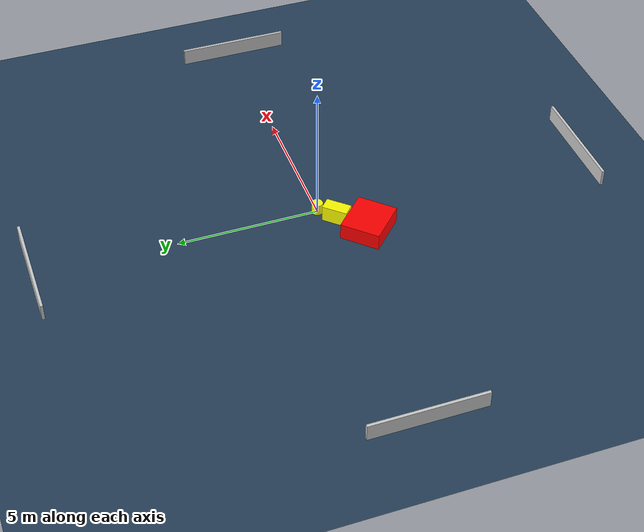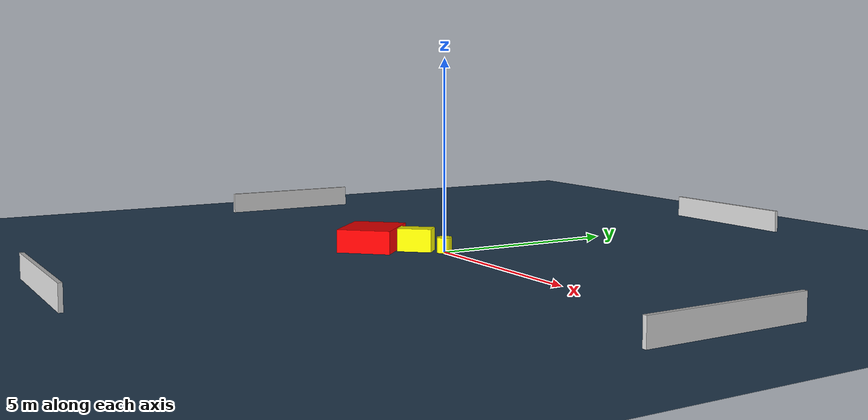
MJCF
<?xml version="1.0" ?>
<mujoco model="generated_environment">
  <option timestep="0.01" integrator="RK4" cone="elliptic"/>
  <default>
    <geom density="1"/>
  </default>
  <asset>
    <texture builtin="gradient" height="3072" name="skybox" rgb1="0.3 0.5 0.7" rgb2="0 0 0" type="skybox" width="512"/>
    <texture builtin="checker" height="300" name="groundplane" rgb1="0.2 0.3 0.4" rgb2="0.1 0.2 0.3" type="2d" width="300"/>
    <material name="groundplane" reflectance="0.2" texrepeat="5 5" texture="groundplane"/>
  </asset>
  <worldbody>
    <light dir="0 0 -1" directional="true" pos="0 0 1.5"/>
    <geom condim="3" friction="0.5 0.005 0.001" material="groundplane" name="floor" pos="0 0 0" size="0 0 0.05" type="plane"/>
    <body name="walls">
      <geom name="wall_1" condim="4" pos="-10.0 0.0 0.3" rgba="0.800000011920929 0.800000011920929 0.800000011920929 1.0" size="0.05 2.0 0.3" type="box"/>
      <geom name="wall_2" condim="4" pos="10.0 0.0 0.3" rgba="0.800000011920929 0.800000011920929 0.800000011920929 1.0" size="0.05 2.0 0.3" type="box"/>
      <geom name="wall_3" condim="4" pos="0.0 -10.0 0.3" rgba="0.800000011920929 0.800000011920929 0.800000011920929 1.0" size="2.0 0.05 0.3" type="box"/>
      <geom name="wall_4" condim="4" pos="0.0 10.0 0.3" rgba="0.800000011920929 0.800000011920929 0.800000011920929 1.0" size="2.0 0.05 0.3" type="box"/>
    </body>
    <body name="robot">
      <joint name="joint_x" type="slide" pos="0 0 0" axis="1 0 0"/>
      <joint name="joint_y" type="slide" pos="0 0 0" axis="0 1 0"/>
      <geom name="robot" type="cylinder" pos="0.0 0.0 0.2" size="0.2 0.2 0.0" mass="5.0" friction="1.0 0.005 0.0001" condim="4" rgba="1.0 1.0 0.0 1.0"/>
    </body>
    <body name="obstacle_1_movable">
      <geom name="obstacle_1_movable" condim="4" pos="-0.6157939213649188 -0.4945300931402418 0.3" euler="0 0 227.1415558808534" friction="0.0 0.005 0.001" rgba="1.0 1.0 0.0 1.0" size="0.4504212747265728 0.22915816901294422 0.3" type="box" mass="0.1"/>
      <joint type="free"/>
    </body>
    <body name="obstacle_2_static">
      <geom name="obstacle_2_static" condim="4" pos="-1.4636479612276148 -1.347991824014398 0.3" euler="0 0 45.95621718203031" friction="0.0 0.005 0.001" rgba="1.0 0.0 0.0 1.0" size="0.7071410428975284 0.7897269983983488 0.3" type="box"/>
    </body>
  </worldbody>
  <actuator>
    <motor name="actuator_x" joint="joint_x" gear="1" ctrlrange="-1 1"/>
    <motor name="actuator_y" joint="joint_y" gear="1" ctrlrange="-1 1"/>
  </actuator>
</mujoco>
